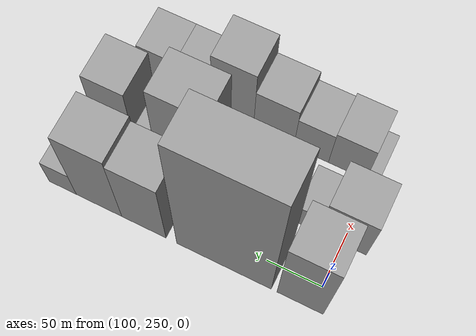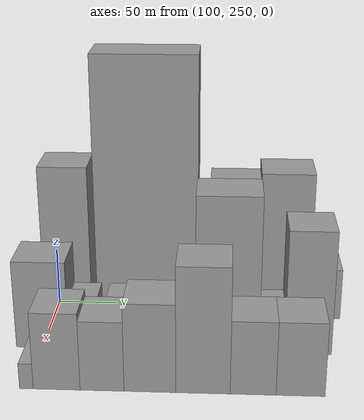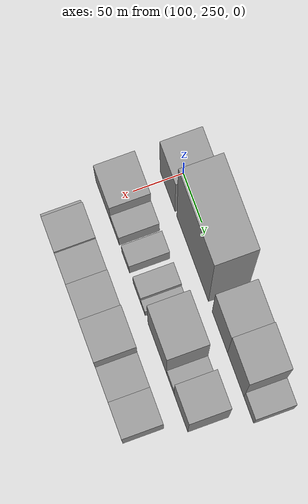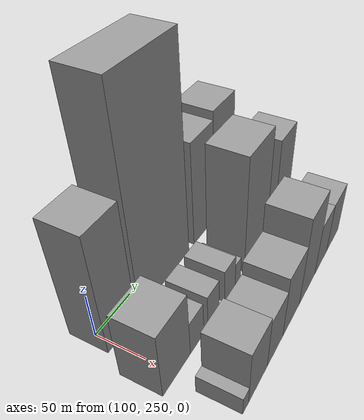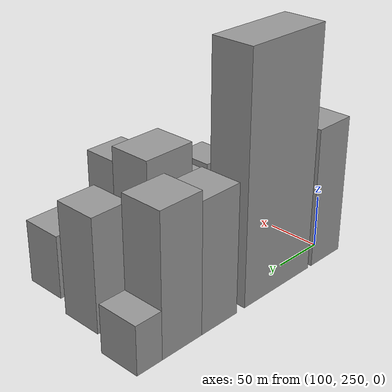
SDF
<sdf version="1.6">
 <world name="default">
  <model name="building_35">
   <static>1</static>
   <pose>100.0000 261.0740 0 0.000000 0.000000 0.000000</pose>
   <link name="link">
    <pose>0 0 66.00 0 0 0</pose>
    <collision name="collision"><geometry><box><size>40.0000 40.8104 132.0000</size></box></geometry></collision>
    <visual name="visual">
     <cast_shadows>0</cast_shadows>
     <geometry><box><size>40.0000 40.8104 132.0000</size></box></geometry>
     <material>
      <script>
       <uri>model://grey_wall/materials/scripts</uri>
       <uri>model://grey_wall/materials/textures</uri>
       <name>vrc/grey_wall</name>
      </script>
     </material>
    </visual>
   </link>
  </model>
  <model name="building_36">
   <static>1</static>
   <pose>100.0000 329.4109 0 0.000000 0.000000 0.000000</pose>
   <link name="link">
    <pose>0 0 112.50 0 0 0</pose>
    <collision name="collision"><geometry><box><size>40.0000 85.8635 225.0000</size></box></geometry></collision>
    <visual name="visual">
     <cast_shadows>0</cast_shadows>
     <geometry><box><size>40.0000 85.8635 225.0000</size></box></geometry>
     <material>
      <script>
       <uri>model://grey_wall/materials/scripts</uri>
       <uri>model://grey_wall/materials/textures</uri>
       <name>vrc/grey_wall</name>
      </script>
     </material>
    </visual>
   </link>
  </model>
  <model name="building_37">
   <static>1</static>
   <pose>100.0000 403.0625 0 0.000000 0.000000 0.000000</pose>
   <link name="link">
    <pose>0 0 60.00 0 0 0</pose>
    <collision name="collision"><geometry><box><size>40.0000 41.4397 120.0000</size></box></geometry></collision>
    <visual name="visual">
     <cast_shadows>0</cast_shadows>
     <geometry><box><size>40.0000 41.4397 120.0000</size></box></geometry>
     <material>
      <script>
       <uri>model://grey_wall/materials/scripts</uri>
       <uri>model://grey_wall/materials/textures</uri>
       <name>vrc/grey_wall</name>
      </script>
     </material>
    </visual>
   </link>
  </model>
  <model name="building_38">
   <static>1</static>
   <pose>100.0000 445.5145 0 0.000000 0.000000 0.000000</pose>
   <link name="link">
    <pose>0 0 64.50 0 0 0</pose>
    <collision name="collision"><geometry><box><size>40.0000 43.4644 129.0000</size></box></geometry></collision>
    <visual name="visual">
     <cast_shadows>0</cast_shadows>
     <geometry><box><size>40.0000 43.4644 129.0000</size></box></geometry>
     <material>
      <script>
       <uri>model://grey_wall/materials/scripts</uri>
       <uri>model://grey_wall/materials/textures</uri>
       <name>vrc/grey_wall</name>
      </script>
     </material>
    </visual>
   </link>
  </model>
  <model name="building_39">
   <static>1</static>
   <pose>100.0000 480.3300 0 0.000000 0.000000 0.000000</pose>
   <link name="link">
    <pose>0 0 22.50 0 0 0</pose>
    <collision name="collision"><geometry><box><size>40.0000 26.1667 45.0000</size></box></geometry></collision>
    <visual name="visual">
     <cast_shadows>0</cast_shadows>
     <geometry><box><size>40.0000 26.1667 45.0000</size></box></geometry>
     <material>
      <script>
       <uri>model://grey_wall/materials/scripts</uri>
       <uri>model://grey_wall/materials/textures</uri>
       <name>vrc/grey_wall</name>
      </script>
     </material>
    </visual>
   </link>
  </model>
  <model name="building_85">
   <static>1</static>
   <pose>160.0000 250.0289 0 0.000000 0.000000 0.000000</pose>
   <link name="link">
    <pose>0 0 37.50 0 0 0</pose>
    <collision name="collision"><geometry><box><size>40.0000 42.0532 75.0000</size></box></geometry></collision>
    <visual name="visual">
     <cast_shadows>0</cast_shadows>
     <geometry><box><size>40.0000 42.0532 75.0000</size></box></geometry>
     <material>
      <script>
       <uri>model://grey_wall/materials/scripts</uri>
       <uri>model://grey_wall/materials/textures</uri>
       <name>vrc/grey_wall</name>
      </script>
     </material>
    </visual>
   </link>
  </model>
  <model name="building_86">
   <static>1</static>
   <pose>160.0000 282.3852 0 0.000000 0.000000 0.000000</pose>
   <link name="link">
    <pose>0 0 19.50 0 0 0</pose>
    <collision name="collision"><geometry><box><size>40.0000 22.6594 39.0000</size></box></geometry></collision>
    <visual name="visual">
     <cast_shadows>0</cast_shadows>
     <geometry><box><size>40.0000 22.6594 39.0000</size></box></geometry>
     <material>
      <script>
       <uri>model://grey_wall/materials/scripts</uri>
       <uri>model://grey_wall/materials/textures</uri>
       <name>vrc/grey_wall</name>
      </script>
     </material>
    </visual>
   </link>
  </model>
  <model name="building_87">
   <static>1</static>
   <pose>160.0000 311.2441 0 0.000000 0.000000 0.000000</pose>
   <link name="link">
    <pose>0 0 19.50 0 0 0</pose>
    <collision name="collision"><geometry><box><size>40.0000 21.0583 39.0000</size></box></geometry></collision>
    <visual name="visual">
     <cast_shadows>0</cast_shadows>
     <geometry><box><size>40.0000 21.0583 39.0000</size></box></geometry>
     <material>
      <script>
       <uri>model://grey_wall/materials/scripts</uri>
       <uri>model://grey_wall/materials/textures</uri>
       <name>vrc/grey_wall</name>
      </script>
     </material>
    </visual>
   </link>
  </model>
  <model name="building_88">
   <static>1</static>
   <pose>160.0000 342.4402 0 0.000000 0.000000 0.000000</pose>
   <link name="link">
    <pose>0 0 19.50 0 0 0</pose>
    <collision name="collision"><geometry><box><size>40.0000 21.3340 39.0000</size></box></geometry></collision>
    <visual name="visual">
     <cast_shadows>0</cast_shadows>
     <geometry><box><size>40.0000 21.3340 39.0000</size></box></geometry>
     <material>
      <script>
       <uri>model://grey_wall/materials/scripts</uri>
       <uri>model://grey_wall/materials/textures</uri>
       <name>vrc/grey_wall</name>
      </script>
     </material>
    </visual>
   </link>
  </model>
  <model name="building_89">
   <static>1</static>
   <pose>160.0000 358.8077 0 0.000000 0.000000 0.000000</pose>
   <link name="link">
    <pose>0 0 13.50 0 0 0</pose>
    <collision name="collision"><geometry><box><size>40.0000 11.4010 27.0000</size></box></geometry></collision>
    <visual name="visual">
     <cast_shadows>0</cast_shadows>
     <geometry><box><size>40.0000 11.4010 27.0000</size></box></geometry>
     <material>
      <script>
       <uri>model://grey_wall/materials/scripts</uri>
       <uri>model://grey_wall/materials/textures</uri>
       <name>vrc/grey_wall</name>
      </script>
     </material>
    </visual>
   </link>
  </model>
  <model name="building_90">
   <static>1</static>
   <pose>160.0000 397.8116 0 0.000000 0.000000 0.000000</pose>
   <link name="link">
    <pose>0 0 66.00 0 0 0</pose>
    <collision name="collision"><geometry><box><size>40.0000 50.6069 132.0000</size></box></geometry></collision>
    <visual name="visual">
     <cast_shadows>0</cast_shadows>
     <geometry><box><size>40.0000 50.6069 132.0000</size></box></geometry>
     <material>
      <script>
       <uri>model://grey_wall/materials/scripts</uri>
       <uri>model://grey_wall/materials/textures</uri>
       <name>vrc/grey_wall</name>
      </script>
     </material>
    </visual>
   </link>
  </model>
  <model name="building_91">
   <static>1</static>
   <pose>160.0000 433.1164 0 0.000000 0.000000 0.000000</pose>
   <link name="link">
    <pose>0 0 18.00 0 0 0</pose>
    <collision name="collision"><geometry><box><size>40.0000 20.0027 36.0000</size></box></geometry></collision>
    <visual name="visual">
     <cast_shadows>0</cast_shadows>
     <geometry><box><size>40.0000 20.0027 36.0000</size></box></geometry>
     <material>
      <script>
       <uri>model://grey_wall/materials/scripts</uri>
       <uri>model://grey_wall/materials/textures</uri>
       <name>vrc/grey_wall</name>
      </script>
     </material>
    </visual>
   </link>
  </model>
  <model name="building_92">
   <static>1</static>
   <pose>160.0000 461.6123 0 0.000000 0.000000 0.000000</pose>
   <link name="link">
    <pose>0 0 52.50 0 0 0</pose>
    <collision name="collision"><geometry><box><size>40.0000 36.9890 105.0000</size></box></geometry></collision>
    <visual name="visual">
     <cast_shadows>0</cast_shadows>
     <geometry><box><size>40.0000 36.9890 105.0000</size></box></geometry>
     <material>
      <script>
       <uri>model://grey_wall/materials/scripts</uri>
       <uri>model://grey_wall/materials/textures</uri>
       <name>vrc/grey_wall</name>
      </script>
     </material>
    </visual>
   </link>
  </model>
  <model name="building_139">
   <static>1</static>
   <pose>220.0000 249.5960 0 0.000000 0.000000 0.000000</pose>
   <link name="link">
    <pose>0 0 10.50 0 0 0</pose>
    <collision name="collision"><geometry><box><size>40.0000 10.2051 21.0000</size></box></geometry></collision>
    <visual name="visual">
     <cast_shadows>0</cast_shadows>
     <geometry><box><size>40.0000 10.2051 21.0000</size></box></geometry>
     <material>
      <script>
       <uri>model://grey_wall/materials/scripts</uri>
       <uri>model://grey_wall/materials/textures</uri>
       <name>vrc/grey_wall</name>
      </script>
     </material>
    </visual>
   </link>
  </model>
  <model name="building_140">
   <static>1</static>
   <pose>220.0000 272.1469 0 0.000000 0.000000 0.000000</pose>
   <link name="link">
    <pose>0 0 31.50 0 0 0</pose>
    <collision name="collision"><geometry><box><size>40.0000 34.8967 63.0000</size></box></geometry></collision>
    <visual name="visual">
     <cast_shadows>0</cast_shadows>
     <geometry><box><size>40.0000 34.8967 63.0000</size></box></geometry>
     <material>
      <script>
       <uri>model://grey_wall/materials/scripts</uri>
       <uri>model://grey_wall/materials/textures</uri>
       <name>vrc/grey_wall</name>
      </script>
     </material>
    </visual>
   </link>
  </model>
  <model name="building_141">
   <static>1</static>
   <pose>220.0000 305.8644 0 0.000000 0.000000 0.000000</pose>
   <link name="link">
    <pose>0 0 28.50 0 0 0</pose>
    <collision name="collision"><geometry><box><size>40.0000 32.5383 57.0000</size></box></geometry></collision>
    <visual name="visual">
     <cast_shadows>0</cast_shadows>
     <geometry><box><size>40.0000 32.5383 57.0000</size></box></geometry>
     <material>
      <script>
       <uri>model://grey_wall/materials/scripts</uri>
       <uri>model://grey_wall/materials/textures</uri>
       <name>vrc/grey_wall</name>
      </script>
     </material>
    </visual>
   </link>
  </model>
  <model name="building_142">
   <static>1</static>
   <pose>220.0000 341.2232 0 0.000000 0.000000 0.000000</pose>
   <link name="link">
    <pose>0 0 36.00 0 0 0</pose>
    <collision name="collision"><geometry><box><size>40.0000 38.1792 72.0000</size></box></geometry></collision>
    <visual name="visual">
     <cast_shadows>0</cast_shadows>
     <geometry><box><size>40.0000 38.1792 72.0000</size></box></geometry>
     <material>
      <script>
       <uri>model://grey_wall/materials/scripts</uri>
       <uri>model://grey_wall/materials/textures</uri>
       <name>vrc/grey_wall</name>
      </script>
     </material>
    </visual>
   </link>
  </model>
  <model name="building_143">
   <static>1</static>
   <pose>220.0000 380.2902 0 0.000000 0.000000 0.000000</pose>
   <link name="link">
    <pose>0 0 51.00 0 0 0</pose>
    <collision name="collision"><geometry><box><size>40.0000 39.9548 102.0000</size></box></geometry></collision>
    <visual name="visual">
     <cast_shadows>0</cast_shadows>
     <geometry><box><size>40.0000 39.9548 102.0000</size></box></geometry>
     <material>
      <script>
       <uri>model://grey_wall/materials/scripts</uri>
       <uri>model://grey_wall/materials/textures</uri>
       <name>vrc/grey_wall</name>
      </script>
     </material>
    </visual>
   </link>
  </model>
  <model name="building_144">
   <static>1</static>
   <pose>220.0000 417.0339 0 0.000000 0.000000 0.000000</pose>
   <link name="link">
    <pose>0 0 30.00 0 0 0</pose>
    <collision name="collision"><geometry><box><size>40.0000 33.5327 60.0000</size></box></geometry></collision>
    <visual name="visual">
     <cast_shadows>0</cast_shadows>
     <geometry><box><size>40.0000 33.5327 60.0000</size></box></geometry>
     <material>
      <script>
       <uri>model://grey_wall/materials/scripts</uri>
       <uri>model://grey_wall/materials/textures</uri>
       <name>vrc/grey_wall</name>
      </script>
     </material>
    </visual>
   </link>
  </model>
  <model name="building_145">
   <static>1</static>
   <pose>220.0000 451.5958 0 0.000000 0.000000 0.000000</pose>
   <link name="link">
    <pose>0 0 30.00 0 0 0</pose>
    <collision name="collision"><geometry><box><size>40.0000 35.5911 60.0000</size></box></geometry></collision>
    <visual name="visual">
     <cast_shadows>0</cast_shadows>
     <geometry><box><size>40.0000 35.5911 60.0000</size></box></geometry>
     <material>
      <script>
       <uri>model://grey_wall/materials/scripts</uri>
       <uri>model://grey_wall/materials/textures</uri>
       <name>vrc/grey_wall</name>
      </script>
     </material>
    </visual>
   </link>
  </model>
 </world>
</sdf>
